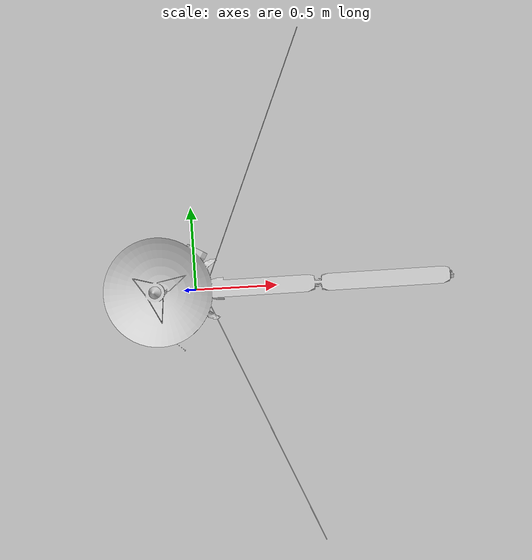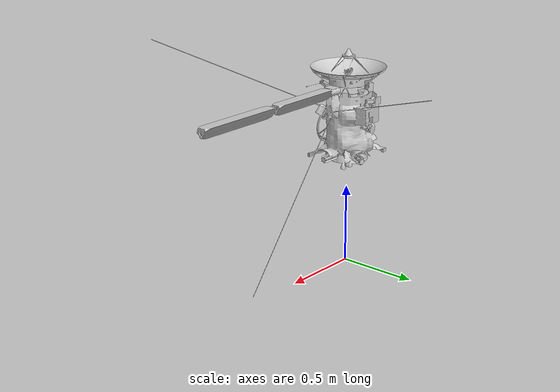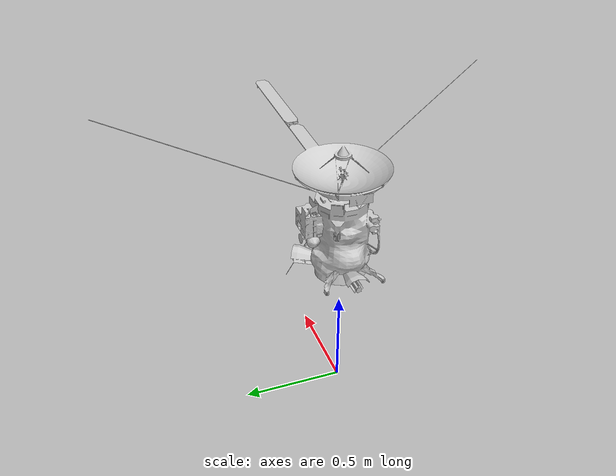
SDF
<sdf version="1.7">
 <world name="default">
  <plugin name="gazebo_ros_state" filename="libgazebo_ros_state.so"><update_rate>1.0</update_rate></plugin>
  <gravity>0 0 0</gravity>
  <magnetic_field>6e-06 2.3e-05 -4.2e-05</magnetic_field>
  <atmosphere type="adiabatic"/>
  <physics type="ode">
   <max_step_size>0.001</max_step_size>
   <real_time_factor>1</real_time_factor>
   <real_time_update_rate>1000</real_time_update_rate>
  </physics>
  <scene>
   <ambient>0.4 0.4 0.38 1</ambient>
   <background>0.175 0.175 0.175 1</background>
   <shadows>1</shadows>
  </scene>
  <spherical_coordinates>
   <surface_model>EARTH_WGS84</surface_model>
   <latitude_deg>0</latitude_deg>
   <longitude_deg>0</longitude_deg>
   <elevation>0</elevation>
   <heading_deg>0</heading_deg>
  </spherical_coordinates>
  <model name="cassini">
   <static>0</static>
   <link name="body">
    <inertial>
     <mass>1.25</mass>
     <inertia>
      <ixx>0.00520833</ixx>
      <ixy>0</ixy>
      <ixz>0</ixz>
      <iyy>0.00520833</iyy>
      <iyz>0</iyz>
      <izz>0.00208333</izz>
     </inertia>
    </inertial>
    <collision name="body_collision_collision">
     <geometry><cylinder><radius>0.2</radius><length>0.55</length></cylinder></geometry>
    </collision>
    <visual name="body_visual_cube_visual">
     <geometry>
      <mesh><scale>1 1 1</scale><uri>/home/frank20a/dev-ws/data/models/cassini/meshes/cassini.dae</uri></mesh>
     </geometry>
     <material>
      <script>
       <uri>/home/frank20a/dev-ws/data/models/cassini/materials/scripts/</uri>
       <uri>/home/frank20a/dev-ws/data/models/cassini/materials/textures/</uri>
       <name>CassiniMat</name>
      </script>
      <shader type="normal_map_tangent_space">
       <normal_map>/home/frank20a/dev-ws/models/cassini/materials/textures/cassini_normal.png</normal_map>
      </shader>
     </material>
    </visual>
    <gravity>0</gravity>
   </link>
   <joint name="body_fix" type="fixed"><parent>estimated_tf</parent><child>body</child></joint>
   <plugin name="controller_plugin" filename="libgazebo_ros_force.so">
    <link_name>body</link_name>
    <force_frame>link</force_frame>
    <ros><namespace>target</namespace></ros>
   </plugin>
   <plugin name="p3d" filename="libgazebo_ros_p3d.so">
    <frame_name>world</frame_name>
    <body_name>body</body_name>
    <topic_name>odom</topic_name>
    <update_rate>30.0</update_rate>
    <ros><namespace>target</namespace></ros>
   </plugin>
   <pose>0 0 1 0 -0 0</pose>
  </model>
  <light name="light1" type="point">
   <pose>-5.74255 -0.427307 1 0 -0 0</pose>
   <diffuse>0.5 0.5 0.5 1</diffuse>
   <specular>0.1 0.1 0.1 1</specular>
   <attenuation>
    <range>150</range>
    <constant>-1</constant>
    <linear>0.01</linear>
    <quadratic>0.001</quadratic>
   </attenuation>
   <cast_shadows>0</cast_shadows>
   <direction>0 0 -1</direction>
   <spot><inner_angle>0</inner_angle><outer_angle>0</outer_angle><falloff>0</falloff></spot>
  </light>
  <light name="light2" type="point">
   <pose>0.004052 8.09314 10 0 -0 0</pose>
   <diffuse>0.498039 0.498039 0.498039 1</diffuse>
   <specular>0.0980392 0.0980392 0.0980392 1</specular>
   <direction>0 0 -1</direction>
   <attenuation>
    <range>150</range>
    <constant>-1</constant>
    <linear>0.01</linear>
    <quadratic>0.001</quadratic>
   </attenuation>
   <cast_shadows>0</cast_shadows>
   <spot><inner_angle>0</inner_angle><outer_angle>0</outer_angle><falloff>0</falloff></spot>
  </light>
  <light name="light3" type="point">
   <pose>0.239835 -8.57674 10 0 -0 0</pose>
   <diffuse>0.498039 0.498039 0.498039 1</diffuse>
   <specular>0.0980392 0.0980392 0.0980392 1</specular>
   <direction>0 0 -1</direction>
   <attenuation>
    <range>150</range>
    <constant>-1</constant>
    <linear>0.01</linear>
    <quadratic>0.001</quadratic>
   </attenuation>
   <cast_shadows>0</cast_shadows>
   <spot><inner_angle>0</inner_angle><outer_angle>0</outer_angle><falloff>0</falloff></spot>
  </light>
  <light name="light4" type="point">
   <pose>15.0737 1.15966 10 0 -0 0</pose>
   <diffuse>0.498039 0.498039 0.498039 1</diffuse>
   <specular>0.0980392 0.0980392 0.0980392 1</specular>
   <direction>0 0 -1</direction>
   <attenuation>
    <range>150</range>
    <constant>-1</constant>
    <linear>0.01</linear>
    <quadratic>0.001</quadratic>
   </attenuation>
   <cast_shadows>0</cast_shadows>
   <spot><inner_angle>0</inner_angle><outer_angle>0</outer_angle><falloff>0</falloff></spot>
  </light>
 </world>
</sdf>
